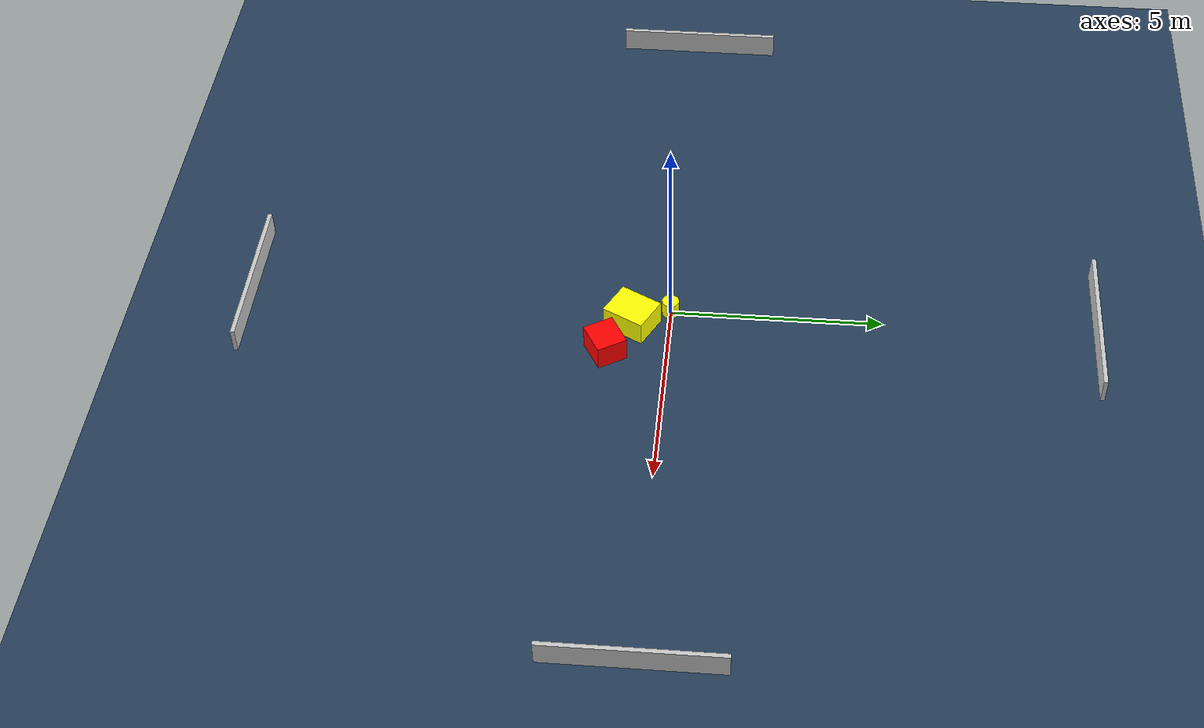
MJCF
<?xml version="1.0" ?>
<mujoco model="generated_environment">
  <option timestep="0.01" integrator="RK4" cone="elliptic"/>
  <default>
    <geom density="1"/>
  </default>
  <asset>
    <texture builtin="gradient" height="3072" name="skybox" rgb1="0.3 0.5 0.7" rgb2="0 0 0" type="skybox" width="512"/>
    <texture builtin="checker" height="300" name="groundplane" rgb1="0.2 0.3 0.4" rgb2="0.1 0.2 0.3" type="2d" width="300"/>
    <material name="groundplane" reflectance="0.2" texrepeat="5 5" texture="groundplane"/>
  </asset>
  <worldbody>
    <light dir="0 0 -1" directional="true" pos="0 0 1.5"/>
    <geom condim="3" friction="0.5 0.005 0.001" material="groundplane" name="floor" pos="0 0 0" size="0 0 0.05" type="plane"/>
    <body name="walls">
      <geom name="wall_1" condim="4" pos="-10.0 0.0 0.3" rgba="0.800000011920929 0.800000011920929 0.800000011920929 1.0" size="0.05 2.0 0.3" type="box"/>
      <geom name="wall_2" condim="4" pos="10.0 0.0 0.3" rgba="0.800000011920929 0.800000011920929 0.800000011920929 1.0" size="0.05 2.0 0.3" type="box"/>
      <geom name="wall_3" condim="4" pos="0.0 -10.0 0.3" rgba="0.800000011920929 0.800000011920929 0.800000011920929 1.0" size="2.0 0.05 0.3" type="box"/>
      <geom name="wall_4" condim="4" pos="0.0 10.0 0.3" rgba="0.800000011920929 0.800000011920929 0.800000011920929 1.0" size="2.0 0.05 0.3" type="box"/>
    </body>
    <body name="robot">
      <joint name="joint_x" type="slide" pos="0 0 0" axis="1 0 0"/>
      <joint name="joint_y" type="slide" pos="0 0 0" axis="0 1 0"/>
      <geom name="robot" type="cylinder" pos="0.0 0.0 0.2" size="0.2 0.2 0.0" mass="5.0" friction="1.0 0.005 0.0001" condim="4" rgba="1.0 1.0 0.0 1.0"/>
    </body>
    <body name="obstacle_1_movable">
      <geom name="obstacle_1_movable" condim="4" pos="0.43280832001349795 -0.8707104834452456 0.3" euler="0 0 332.4959174378386" friction="0.0 0.005 0.001" rgba="1.0 1.0 0.0 1.0" size="0.43358759898687216 0.5246155250543307 0.3" type="box" mass="0.1"/>
      <joint type="free"/>
    </body>
    <body name="obstacle_2_static">
      <geom name="obstacle_2_static" condim="4" pos="1.3716919310105018 -1.4141989369982053 0.3" euler="0 0 30.46665491531185" friction="0.0 0.005 0.001" rgba="1.0 0.0 0.0 1.0" size="0.4072972248563727 0.36727910648715467 0.3" type="box"/>
    </body>
  </worldbody>
  <actuator>
    <motor name="actuator_x" joint="joint_x" gear="1" ctrlrange="-1 1"/>
    <motor name="actuator_y" joint="joint_y" gear="1" ctrlrange="-1 1"/>
  </actuator>
</mujoco>
